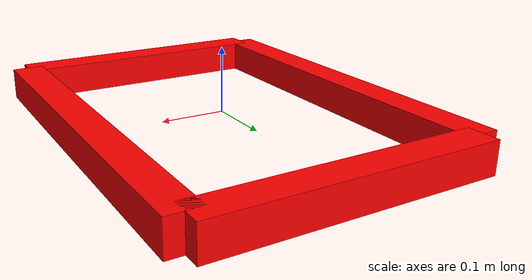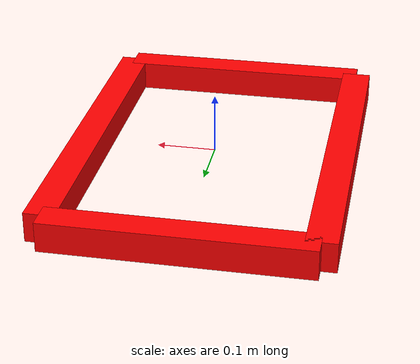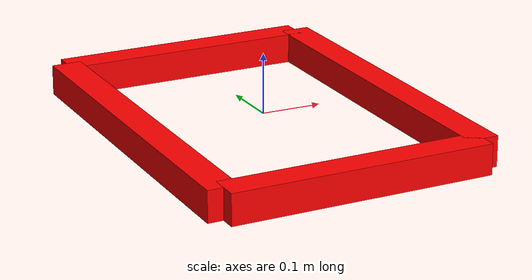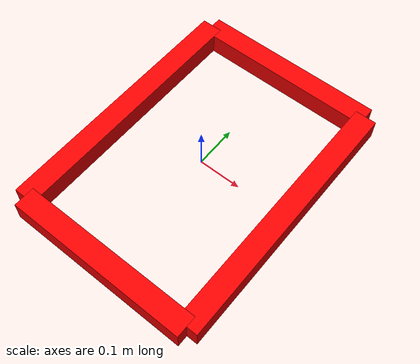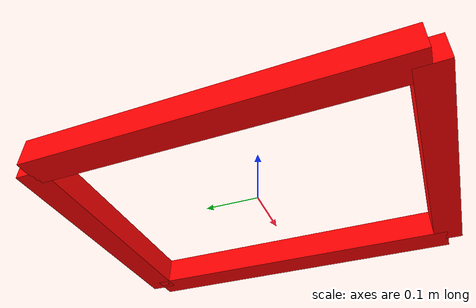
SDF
<?xml version='1.0'?>
<sdf version='1.6'>
    <model name='baseball_strike_zone'>

        <!-- Master link for relative positioning -->
        <link name='master_link'>
            <pose>0 0 0 0 0 0</pose> <!-- Central position of the strike zone -->

            <!-- Top Border -->
            <visual name='border_top_visual'>
                <pose>0 0.305 0 0 0 0</pose> <!-- Half the height -->
                <geometry>
                    <box>
                        <size>0.43 0.05 0.05</size> <!-- Width of home plate and arbitrary thickness -->
                    </box>
                </geometry>
                <material>
                    <ambient>1 0 0 1</ambient>
                    <diffuse>1 0 0 1</diffuse>
                </material>
            </visual>

            <!-- Bottom Border -->
            <visual name='border_bottom_visual'>
                <pose>0 -0.305 0 0 0 0</pose>
                <geometry>
                    <box>
                        <size>0.43 0.05 0.05</size>
                    </box>
                </geometry>
                <material>
                    <ambient>1 0 0 1</ambient>
                    <diffuse>1 0 0 1</diffuse>
                </material>
            </visual>

            <!-- Left Border -->
            <visual name='border_left_visual'>
                <pose>-0.215 0 0 0 0 0</pose> <!-- Half the width -->
                <geometry>
                    <box>
                        <size>0.05 0.61 0.05</size> <!-- Height of strike zone and arbitrary thickness -->
                    </box>
                </geometry>
                <material>
                    <ambient>1 0 0 1</ambient>
                    <diffuse>1 0 0 1</diffuse>
                </material>
            </visual>

            <!-- Right Border -->
            <visual name='border_right_visual'>
                <pose>0.215 0 0 0 0 0</pose>
                <geometry>
                    <box>
                        <size>0.05 0.61 0.05</size>
                    </box>
                </geometry>
                <material>
                    <ambient>1 0 0 1</ambient>
                    <diffuse>1 0 0 1</diffuse>
                </material>
            </visual>
        </link>
    </model>
</sdf>
